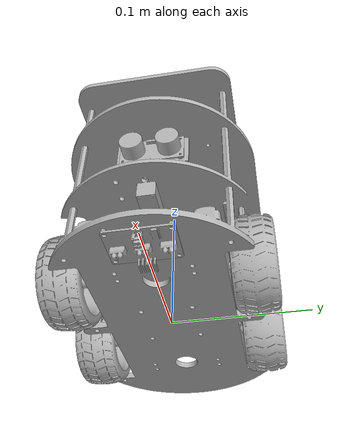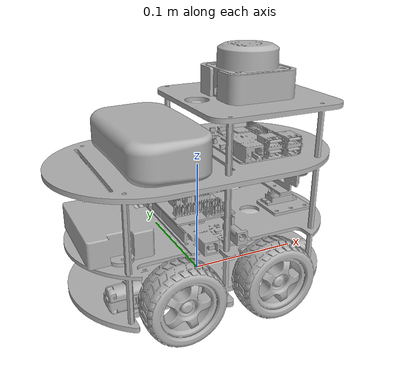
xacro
<?xml version="1.0" ?>
<robot name="navexbot" xmlns:xacro="http://www.ros.org/wiki/xacro">

<xacro:include filename="$(find navexbot_description)/urdf/materials.xacro" />
<xacro:include filename="$(find navexbot_description)/urdf/navexbot.trans" />
<xacro:include filename="$(find navexbot_description)/urdf/navexbot.gazebo" />
<link name="base_link">
  <inertial>
    <origin xyz="-0.009254790102277678 0.00030185646140882204 0.06936285961362405" rpy="0 0 0"/>
    <mass value="0.6870543200175391"/>
    <inertia ixx="0.002614" iyy="0.004939" izz="0.003796" ixy="3e-06" iyz="6e-06" ixz="-0.000506"/>
  </inertial>
  <visual>
    <origin xyz="0 0 0" rpy="0 0 0"/>
    <geometry>
      <mesh filename="file://$(find navexbot_description)/meshes/base_link.stl" scale="0.001 0.001 0.001"/>
    </geometry>
    <material name="silver"/>
  </visual>
  <collision>
    <origin xyz="0 0 0" rpy="0 0 0"/>
    <geometry>
      <mesh filename="file://$(find navexbot_description)/meshes/base_link.stl" scale="0.001 0.001 0.001"/>
    </geometry>
  </collision>
</link>

<link name="Wheel_LF_1">
  <inertial>
    <origin xyz="1.8510277319250257e-07 0.018603678461580245 1.5221070862048158e-07" rpy="0 0 0"/>
    <mass value="0.037002439542276624"/>
    <inertia ixx="1.5e-05" iyy="2.5e-05" izz="1.5e-05" ixy="-0.0" iyz="0.0" ixz="0.0"/>
  </inertial>
  <visual>
    <origin xyz="-0.038932 -0.047014 -0.01575" rpy="0 0 0"/>
    <geometry>
      <mesh filename="file://$(find navexbot_description)/meshes/Wheel_LF_1.stl" scale="0.001 0.001 0.001"/>
    </geometry>
    <material name="silver"/>
  </visual>
  <collision>
    <origin xyz="-0.038932 -0.047014 -0.01575" rpy="0 0 0"/>
    <geometry>
      <mesh filename="file://$(find navexbot_description)/meshes/Wheel_LF_1.stl" scale="0.001 0.001 0.001"/>
    </geometry>
  </collision>
</link>

<link name="Wheel_LB_1">
  <inertial>
    <origin xyz="-1.921409517532946e-07 0.018603754230977626 -5.947778727866115e-09" rpy="0 0 0"/>
    <mass value="0.03700243954227665"/>
    <inertia ixx="1.5e-05" iyy="2.5e-05" izz="1.5e-05" ixy="-0.0" iyz="0.0" ixz="0.0"/>
  </inertial>
  <visual>
    <origin xyz="0.042999 -0.047014 -0.01575" rpy="0 0 0"/>
    <geometry>
      <mesh filename="file://$(find navexbot_description)/meshes/Wheel_LB_1.stl" scale="0.001 0.001 0.001"/>
    </geometry>
    <material name="silver"/>
  </visual>
  <collision>
    <origin xyz="0.042999 -0.047014 -0.01575" rpy="0 0 0"/>
    <geometry>
      <mesh filename="file://$(find navexbot_description)/meshes/Wheel_LB_1.stl" scale="0.001 0.001 0.001"/>
    </geometry>
  </collision>
</link>

<link name="Wheel_RF_1">
  <inertial>
    <origin xyz="1.6086463860282008e-07 -0.018604422329440283 1.602145324429427e-07" rpy="0 0 0"/>
    <mass value="0.03700239760564051"/>
    <inertia ixx="1.5e-05" iyy="2.5e-05" izz="1.5e-05" ixy="0.0" iyz="0.0" ixz="0.0"/>
  </inertial>
  <visual>
    <origin xyz="-0.038932 0.046092 -0.01575" rpy="0 0 0"/>
    <geometry>
      <mesh filename="file://$(find navexbot_description)/meshes/Wheel_RF_1.stl" scale="0.001 0.001 0.001"/>
    </geometry>
    <material name="silver"/>
  </visual>
  <collision>
    <origin xyz="-0.038932 0.046092 -0.01575" rpy="0 0 0"/>
    <geometry>
      <mesh filename="file://$(find navexbot_description)/meshes/Wheel_RF_1.stl" scale="0.001 0.001 0.001"/>
    </geometry>
  </collision>
</link>

<link name="Wheel_RB_1">
  <inertial>
    <origin xyz="-2.107192602282537e-07 -0.018604498064225893 2.0560647628897755e-09" rpy="0 0 0"/>
    <mass value="0.0370023992249136"/>
    <inertia ixx="1.5e-05" iyy="2.5e-05" izz="1.5e-05" ixy="0.0" iyz="0.0" ixz="0.0"/>
  </inertial>
  <visual>
    <origin xyz="0.042999 0.046092 -0.01575" rpy="0 0 0"/>
    <geometry>
      <mesh filename="file://$(find navexbot_description)/meshes/Wheel_RB_1.stl" scale="0.001 0.001 0.001"/>
    </geometry>
    <material name="silver"/>
  </visual>
  <collision>
    <origin xyz="0.042999 0.046092 -0.01575" rpy="0 0 0"/>
    <geometry>
      <mesh filename="file://$(find navexbot_description)/meshes/Wheel_RB_1.stl" scale="0.001 0.001 0.001"/>
    </geometry>
  </collision>
</link>

<link name="Line_Tracking_Module_1">
  <inertial>
    <origin xyz="0.0126086944929195 -0.01981028871989617 -0.003915295414642989" rpy="0 0 0"/>
    <mass value="0.011999979009967751"/>
    <inertia ixx="2e-06" iyy="1e-06" izz="3e-06" ixy="-0.0" iyz="0.0" ixz="0.0"/>
  </inertial>
  <visual>
    <origin xyz="-0.08012 -0.020763 0.0" rpy="0 0 0"/>
    <geometry>
      <mesh filename="file://$(find navexbot_description)/meshes/Line_Tracking_Module_1.stl" scale="0.001 0.001 0.001"/>
    </geometry>
    <material name="silver"/>
  </visual>
  <collision>
    <origin xyz="-0.08012 -0.020763 0.0" rpy="0 0 0"/>
    <geometry>
      <mesh filename="file://$(find navexbot_description)/meshes/Line_Tracking_Module_1.stl" scale="0.001 0.001 0.001"/>
    </geometry>
  </collision>
</link>

<link name="Lidar_1">
  <inertial>
    <origin xyz="8.370960596393306e-05 -9.423957300589091e-05 0.013994531625658113" rpy="0 0 0"/>
    <mass value="0.1179926993495319"/>
    <inertia ixx="5.2e-05" iyy="5.2e-05" izz="7.3e-05" ixy="-0.0" iyz="-0.0" ixz="0.0"/>
  </inertial>
  <visual>
    <origin xyz="-0.045076 -6.4e-05 -0.154908" rpy="0 0 0"/>
    <geometry>
      <mesh filename="file://$(find navexbot_description)/meshes/Lidar_1.stl" scale="0.001 0.001 0.001"/>
    </geometry>
    <material name="silver"/>
  </visual>
  <collision>
    <origin xyz="-0.045076 -6.4e-05 -0.154908" rpy="0 0 0"/>
    <geometry>
      <mesh filename="file://$(find navexbot_description)/meshes/Lidar_1.stl" scale="0.001 0.001 0.001"/>
    </geometry>
  </collision>
</link>

<link name="Power_Bank_1">
  <inertial>
    <origin xyz="0.011837650195611983 -5.249959364234352e-05 0.016000012764119165" rpy="0 0 0"/>
    <mass value="0.5000878365425067"/>
    <inertia ixx="0.000613" iyy="0.000213" izz="0.000743" ixy="0.0" iyz="-0.0" ixz="0.0"/>
  </inertial>
  <visual>
    <origin xyz="0.054924 -6.4e-05 -0.110908" rpy="0 0 0"/>
    <geometry>
      <mesh filename="file://$(find navexbot_description)/meshes/Power_Bank_1.stl" scale="0.001 0.001 0.001"/>
    </geometry>
    <material name="silver"/>
  </visual>
  <collision>
    <origin xyz="0.054924 -6.4e-05 -0.110908" rpy="0 0 0"/>
    <geometry>
      <mesh filename="file://$(find navexbot_description)/meshes/Power_Bank_1.stl" scale="0.001 0.001 0.001"/>
    </geometry>
  </collision>
</link>

<link name="Raspberry_Pi_5_1">
  <inertial>
    <origin xyz="-0.024667493460366292 0.0032864426186286974 0.005320555712791164" rpy="0 0 0"/>
    <mass value="0.07999928086336155"/>
    <inertia ixx="5.3e-05" iyy="2.3e-05" izz="7.2e-05" ixy="-1e-06" iyz="6e-06" ixz="-0.0"/>
  </inertial>
  <visual>
    <origin xyz="-0.069576 0.018936 -0.110908" rpy="0 0 0"/>
    <geometry>
      <mesh filename="file://$(find navexbot_description)/meshes/Raspberry_Pi_5_1.stl" scale="0.001 0.001 0.001"/>
    </geometry>
    <material name="silver"/>
  </visual>
  <collision>
    <origin xyz="-0.069576 0.018936 -0.110908" rpy="0 0 0"/>
    <geometry>
      <mesh filename="file://$(find navexbot_description)/meshes/Raspberry_Pi_5_1.stl" scale="0.001 0.001 0.001"/>
    </geometry>
  </collision>
</link>

<link name="Dead_Plate_1">
  <inertial>
    <origin xyz="-0.01524990186556413 0.010037228251887697 0.001250000000001042" rpy="0 0 0"/>
    <mass value="0.00600080930940492"/>
    <inertia ixx="1e-06" iyy="1e-06" izz="1e-06" ixy="0.0" iyz="0.0" ixz="0.0"/>
  </inertial>
  <visual>
    <origin xyz="-0.101915 0.017411 -0.046908" rpy="0 0 0"/>
    <geometry>
      <mesh filename="file://$(find navexbot_description)/meshes/Dead_Plate_1.stl" scale="0.001 0.001 0.001"/>
    </geometry>
    <material name="silver"/>
  </visual>
  <collision>
    <origin xyz="-0.101915 0.017411 -0.046908" rpy="0 0 0"/>
    <geometry>
      <mesh filename="file://$(find navexbot_description)/meshes/Dead_Plate_1.stl" scale="0.001 0.001 0.001"/>
    </geometry>
  </collision>
</link>

<link name="Servo_1">
  <inertial>
    <origin xyz="-0.014192077698197803 -3.2856839390893976e-07 -0.0038831761202560294" rpy="0 0 0"/>
    <mass value="0.009861404357094051"/>
    <inertia ixx="1e-06" iyy="1e-06" izz="1e-06" ixy="-0.0" iyz="0.0" ixz="0.0"/>
  </inertial>
  <visual>
    <origin xyz="-0.100215 -0.001689 -0.049408" rpy="0 0 0"/>
    <geometry>
      <mesh filename="file://$(find navexbot_description)/meshes/Servo_1.stl" scale="0.001 0.001 0.001"/>
    </geometry>
    <material name="silver"/>
  </visual>
  <collision>
    <origin xyz="-0.100215 -0.001689 -0.049408" rpy="0 0 0"/>
    <geometry>
      <mesh filename="file://$(find navexbot_description)/meshes/Servo_1.stl" scale="0.001 0.001 0.001"/>
    </geometry>
  </collision>
</link>

<link name="Sensor_Mount_Bracket_1">
  <inertial>
    <origin xyz="0.004874415448836419 -3.285684078318304e-07 0.018650516120220402" rpy="0 0 0"/>
    <mass value="0.006020344936903853"/>
    <inertia ixx="2e-06" iyy="1e-06" izz="1e-06" ixy="-0.0" iyz="0.0" ixz="-0.0"/>
  </inertial>
  <visual>
    <origin xyz="-0.08059 -0.001689 -0.060068" rpy="0 0 0"/>
    <geometry>
      <mesh filename="file://$(find navexbot_description)/meshes/Sensor_Mount_Bracket_1.stl" scale="0.001 0.001 0.001"/>
    </geometry>
    <material name="silver"/>
  </visual>
  <collision>
    <origin xyz="-0.08059 -0.001689 -0.060068" rpy="0 0 0"/>
    <geometry>
      <mesh filename="file://$(find navexbot_description)/meshes/Sensor_Mount_Bracket_1.stl" scale="0.001 0.001 0.001"/>
    </geometry>
  </collision>
</link>

<link name="Ultrasonic_Sensor_1">
  <inertial>
    <origin xyz="0.004740381871565155 -0.02035033093842032 -0.00812316282233208" rpy="0 0 0"/>
    <mass value="0.011000008055678936"/>
    <inertia ixx="2e-06" iyy="0.0" izz="2e-06" ixy="-0.0" iyz="-0.0" ixz="-0.0"/>
  </inertial>
  <visual>
    <origin xyz="-0.08959 -0.022039 -0.092918" rpy="0 0 0"/>
    <geometry>
      <mesh filename="file://$(find navexbot_description)/meshes/Ultrasonic_Sensor_1.stl" scale="0.001 0.001 0.001"/>
    </geometry>
    <material name="silver"/>
  </visual>
  <collision>
    <origin xyz="-0.08959 -0.022039 -0.092918" rpy="0 0 0"/>
    <geometry>
      <mesh filename="file://$(find navexbot_description)/meshes/Ultrasonic_Sensor_1.stl" scale="0.001 0.001 0.001"/>
    </geometry>
  </collision>
</link>

<link name="Arduino_Mega_1">
  <inertial>
    <origin xyz="-0.0248466232318342 0.029164935620340074 0.0028012635578150286" rpy="0 0 0"/>
    <mass value="0.03699959187591482"/>
    <inertia ixx="4.2e-05" iyy="1e-05" izz="5.1e-05" ixy="-1e-06" iyz="1e-06" ixz="0.0"/>
  </inertial>
  <visual>
    <origin xyz="-0.021607 0.036831 -0.046908" rpy="0 0 0"/>
    <geometry>
      <mesh filename="file://$(find navexbot_description)/meshes/Arduino_Mega_1.stl" scale="0.001 0.001 0.001"/>
    </geometry>
    <material name="silver"/>
  </visual>
  <collision>
    <origin xyz="-0.021607 0.036831 -0.046908" rpy="0 0 0"/>
    <geometry>
      <mesh filename="file://$(find navexbot_description)/meshes/Arduino_Mega_1.stl" scale="0.001 0.001 0.001"/>
    </geometry>
  </collision>
</link>

<link name="Expansion_Board_1">
  <inertial>
    <origin xyz="-0.026262260527304696 -0.01037457478684979 0.0033159642124570912" rpy="0 0 0"/>
    <mass value="0.019018596989076455"/>
    <inertia ixx="6e-06" iyy="5e-06" izz="1e-05" ixy="0.0" iyz="0.0" ixz="-0.0"/>
  </inertial>
  <visual>
    <origin xyz="-0.021857 -0.018969 -0.057008" rpy="0 0 0"/>
    <geometry>
      <mesh filename="file://$(find navexbot_description)/meshes/Expansion_Board_1.stl" scale="0.001 0.001 0.001"/>
    </geometry>
    <material name="silver"/>
  </visual>
  <collision>
    <origin xyz="-0.021857 -0.018969 -0.057008" rpy="0 0 0"/>
    <geometry>
      <mesh filename="file://$(find navexbot_description)/meshes/Expansion_Board_1.stl" scale="0.001 0.001 0.001"/>
    </geometry>
  </collision>
</link>

<joint name="Revolute 16" type="continuous">
  <origin xyz="0.038932 0.047014 0.01575" rpy="0 0 0"/>
  <parent link="base_link"/>
  <child link="Wheel_LF_1"/>
  <axis xyz="-0.0 1.0 0.0"/>
</joint>

<joint name="Revolute 17" type="continuous">
  <origin xyz="-0.042999 0.047014 0.01575" rpy="0 0 0"/>
  <parent link="base_link"/>
  <child link="Wheel_LB_1"/>
  <axis xyz="-0.0 -1.0 0.0"/>
</joint>

<joint name="Revolute 18" type="continuous">
  <origin xyz="0.038932 -0.046092 0.01575" rpy="0 0 0"/>
  <parent link="base_link"/>
  <child link="Wheel_RF_1"/>
  <axis xyz="0.0 1.0 -0.0"/>
</joint>

<joint name="Revolute 19" type="continuous">
  <origin xyz="-0.042999 -0.046092 0.01575" rpy="0 0 0"/>
  <parent link="base_link"/>
  <child link="Wheel_RB_1"/>
  <axis xyz="0.0 -1.0 0.0"/>
</joint>

<joint name="Rigid 20" type="fixed">
  <origin xyz="0.08012 0.020763 0.0" rpy="0 0 0"/>
  <parent link="base_link"/>
  <child link="Line_Tracking_Module_1"/>
</joint>

<joint name="Rigid 21" type="fixed">
  <origin xyz="0.045076 6.4e-05 0.154908" rpy="0 0 0"/>
  <parent link="base_link"/>
  <child link="Lidar_1"/>
</joint>

<joint name="Rigid 22" type="fixed">
  <origin xyz="-0.054924 6.4e-05 0.110908" rpy="0 0 0"/>
  <parent link="base_link"/>
  <child link="Power_Bank_1"/>
</joint>

<joint name="Rigid 23" type="fixed">
  <origin xyz="0.069576 -0.018936 0.110908" rpy="0 0 0"/>
  <parent link="base_link"/>
  <child link="Raspberry_Pi_5_1"/>
</joint>

<joint name="Rigid 24" type="fixed">
  <origin xyz="0.101915 -0.017411 0.046908" rpy="0 0 0"/>
  <parent link="base_link"/>
  <child link="Dead_Plate_1"/>
</joint>

<joint name="Rigid 25" type="fixed">
  <origin xyz="-0.0017 0.0191 0.0025" rpy="0 0 0"/>
  <parent link="Dead_Plate_1"/>
  <child link="Servo_1"/>
</joint>

<joint name="Revolute 26" type="continuous">
  <origin xyz="-0.019625 0.0 0.01066" rpy="0 0 0"/>
  <parent link="Servo_1"/>
  <child link="Sensor_Mount_Bracket_1"/>
  <axis xyz="0.0 0.0 1.0"/>
</joint>

<joint name="Rigid 27" type="fixed">
  <origin xyz="0.009 0.02035 0.03285" rpy="0 0 0"/>
  <parent link="Sensor_Mount_Bracket_1"/>
  <child link="Ultrasonic_Sensor_1"/>
</joint>

<joint name="Rigid 28" type="fixed">
  <origin xyz="0.021607 -0.036831 0.046908" rpy="0 0 0"/>
  <parent link="base_link"/>
  <child link="Arduino_Mega_1"/>
</joint>

<joint name="Rigid 29" type="fixed">
  <origin xyz="0.00025 0.0558 0.0101" rpy="0 0 0"/>
  <parent link="Arduino_Mega_1"/>
  <child link="Expansion_Board_1"/>
</joint>

</robot>

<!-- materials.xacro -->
<robot name="navexbot" xmlns:xacro="http://www.ros.org/wiki/xacro" >

<material name="silver">
  <color rgba="0.700 0.700 0.700 1.000"/>
</material>

<material name="black">
  <color rgba="0.000 0.000 0.000 1.000"/>
</material>

<material name="light black">
  <color rgba="0.400 0.400 0.400 1.000"/>
</material>

<material name="blue">
  <color rgba="0.043 0.651 0.875 1.000"/>
</material>

<material name="yellow">
  <color rgba="1.000 1.000 0.000 1.000"/>
</material>

<material name="sage">
  <color rgba="0.518 0.600 0.310 1.000"/>
</material>

<material name="teal">
  <color rgba="0.000 0.500 0.500 1.000"/>
</material>

<material name="green">
  <color rgba="0.388 0.639 0.380 1.000"/>
</material>

  <material name="brown">
    <color rgba="0.8706 0.8118 0.7647 1.0"/>
  </material>

</robot>

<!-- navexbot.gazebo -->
<robot name="navexbot" xmlns:xacro="http://www.ros.org/wiki/xacro" >

<xacro:property name="body_color" value="Gazebo/Silver" />

<gazebo>
  <plugin name="control" filename="libgazebo_ros_control.so"/>
</gazebo>
<gazebo reference="base_link">
  <material>${body_color}</material>
  <mu1>0.2</mu1>
  <mu2>0.2</mu2>
  <self_collide>true</self_collide>
  <gravity>true</gravity>
</gazebo>

<gazebo reference="Wheel_LF_1">
  <material>${body_color}</material>
  <mu1>0.2</mu1>
  <mu2>0.2</mu2>
  <self_collide>true</self_collide>
</gazebo>

<gazebo reference="Wheel_LB_1">
  <material>${body_color}</material>
  <mu1>0.2</mu1>
  <mu2>0.2</mu2>
  <self_collide>true</self_collide>
</gazebo>

<gazebo reference="Wheel_RF_1">
  <material>${body_color}</material>
  <mu1>0.2</mu1>
  <mu2>0.2</mu2>
  <self_collide>true</self_collide>
</gazebo>

<gazebo reference="Wheel_RB_1">
  <material>${body_color}</material>
  <mu1>0.2</mu1>
  <mu2>0.2</mu2>
  <self_collide>true</self_collide>
</gazebo>

<gazebo reference="Line_Tracking_Module_1">
  <material>${body_color}</material>
  <mu1>0.2</mu1>
  <mu2>0.2</mu2>
  <self_collide>true</self_collide>
</gazebo>

<gazebo reference="Lidar_1">
  <material>${body_color}</material>
  <mu1>0.2</mu1>
  <mu2>0.2</mu2>
  <self_collide>true</self_collide>
</gazebo>

<gazebo reference="Power_Bank_1">
  <material>${body_color}</material>
  <mu1>0.2</mu1>
  <mu2>0.2</mu2>
  <self_collide>true</self_collide>
</gazebo>

<gazebo reference="Raspberry_Pi_5_1">
  <material>${body_color}</material>
  <mu1>0.2</mu1>
  <mu2>0.2</mu2>
  <self_collide>true</self_collide>
</gazebo>

<gazebo reference="Dead_Plate_1">
  <material>${body_color}</material>
  <mu1>0.2</mu1>
  <mu2>0.2</mu2>
  <self_collide>true</self_collide>
</gazebo>

<gazebo reference="Servo_1">
  <material>${body_color}</material>
  <mu1>0.2</mu1>
  <mu2>0.2</mu2>
  <self_collide>true</self_collide>
</gazebo>

<gazebo reference="Sensor_Mount_Bracket_1">
  <material>${body_color}</material>
  <mu1>0.2</mu1>
  <mu2>0.2</mu2>
  <self_collide>true</self_collide>
</gazebo>

<gazebo reference="Ultrasonic_Sensor_1">
  <material>${body_color}</material>
  <mu1>0.2</mu1>
  <mu2>0.2</mu2>
  <self_collide>true</self_collide>
</gazebo>

<gazebo reference="Arduino_Mega_1">
  <material>${body_color}</material>
  <mu1>0.2</mu1>
  <mu2>0.2</mu2>
  <self_collide>true</self_collide>
</gazebo>

<gazebo reference="Expansion_Board_1">
  <material>${body_color}</material>
  <mu1>0.2</mu1>
  <mu2>0.2</mu2>
  <self_collide>true</self_collide>
</gazebo>

</robot>
